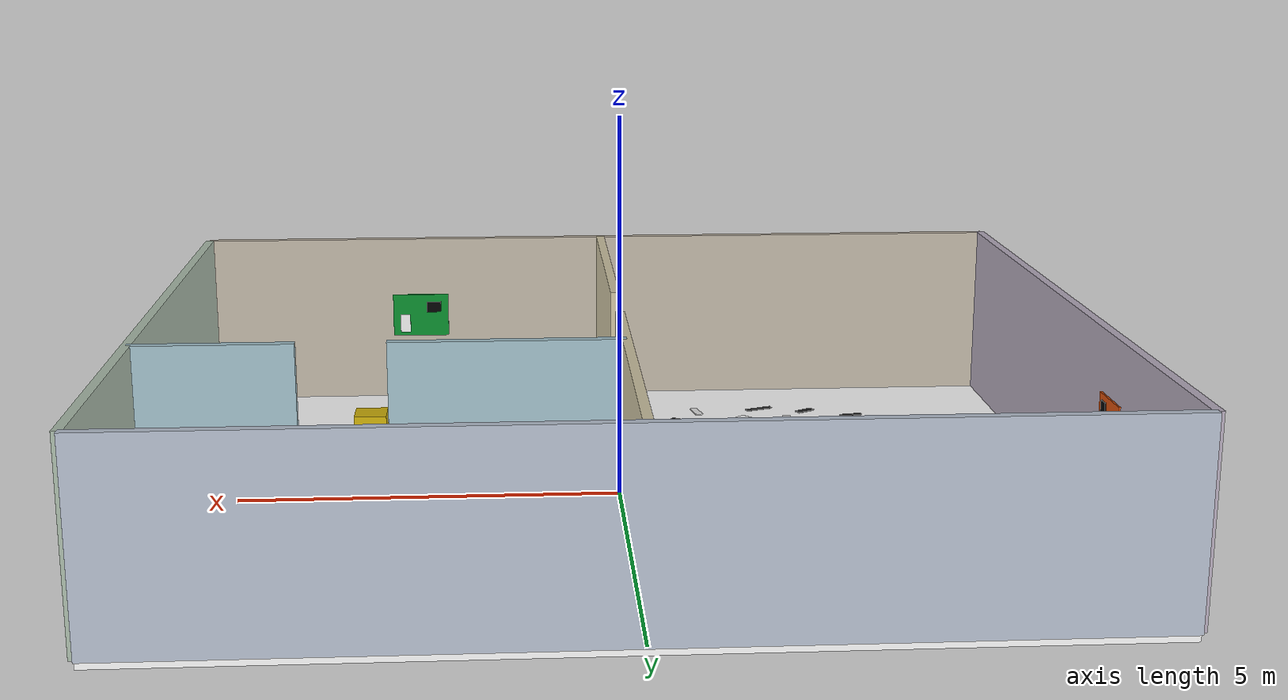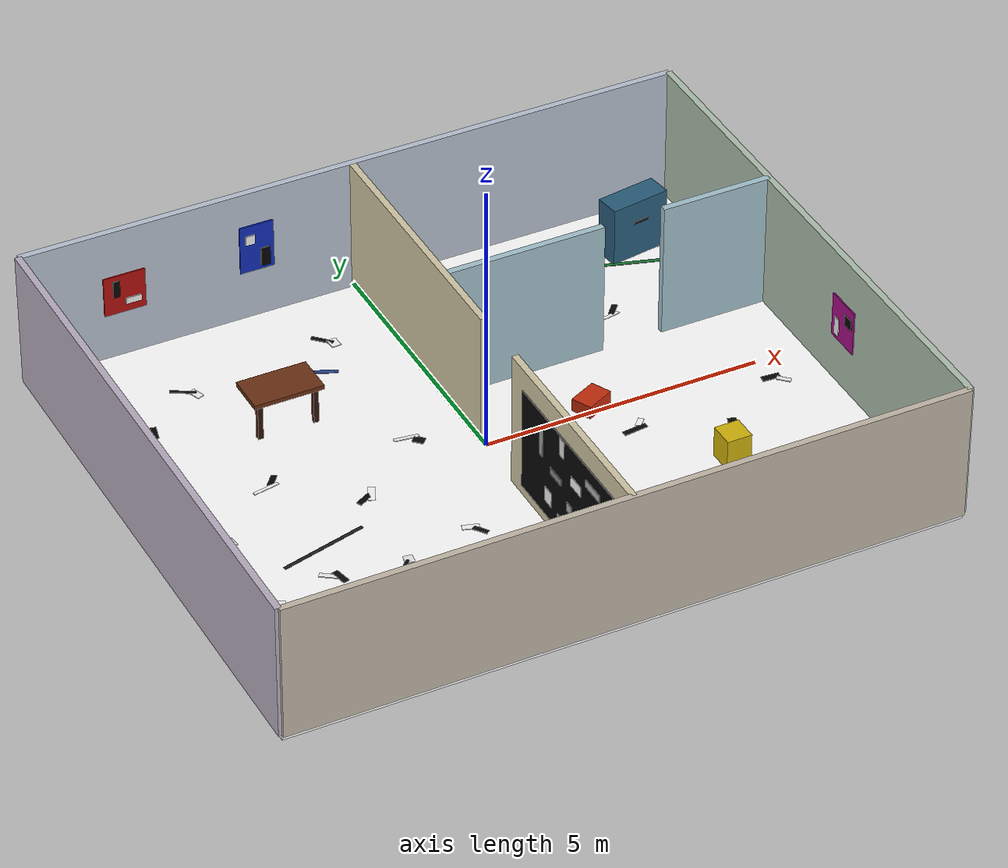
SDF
<?xml version="1.0"?>
<sdf version="1.9">
  <world name="indoor_stereo">
    <physics name="1ms" type="ignored">
      <max_step_size>0.001</max_step_size>
      <real_time_factor>1.0</real_time_factor>
    </physics>

    <plugin filename="ignition-gazebo-physics-system" name="ignition::gazebo::systems::Physics"/>
    <plugin filename="ignition-gazebo-user-commands-system" name="ignition::gazebo::systems::UserCommands"/>
    <plugin filename="ignition-gazebo-scene-broadcaster-system" name="ignition::gazebo::systems::SceneBroadcaster"/>
    <plugin filename="ignition-gazebo-sensors-system" name="ignition::gazebo::systems::Sensors">
      <render_engine>ogre2</render_engine>
    </plugin>

    <scene>
      <ambient>0.55 0.55 0.55 1</ambient>
      <background>0.08 0.10 0.14 1</background>
      <shadows>true</shadows>
    </scene>

    <light name="sun" type="directional">
      <cast_shadows>true</cast_shadows>
      <pose>0 0 8 0 0 0</pose>
      <diffuse>0.8 0.8 0.8 1</diffuse>
      <specular>0.2 0.2 0.2 1</specular>
      <attenuation><range>100</range><constant>0.9</constant><linear>0.01</linear><quadratic>0.001</quadratic></attenuation>
      <direction>-0.4 0.2 -1.0</direction>
    </light>

    <model name="indoor_architecture">
      <static>true</static>
      <link name="architecture">
        <collision name="floor_collision">
          <pose>0 0 -0.05 0 0 0</pose>
          <geometry><box><size>12 10 0.1</size></box></geometry>
        </collision>
        <visual name="floor_visual">
          <pose>0 0 -0.05 0 0 0</pose>
          <geometry><box><size>12 10 0.1</size></box></geometry>
          <material>
            <ambient>1 1 1 1</ambient>
            <diffuse>1 1 1 1</diffuse>
            <specular>0.02 0.02 0.02 1</specular>
            <pbr>
              <metal>
                <albedo_map>../materials/textures/indoor_floor.png</albedo_map>
                <metalness>0.0</metalness>
                <roughness>0.95</roughness>
              </metal>
            </pbr>
          </material>
        </visual>

        <!-- Outer boundary. -->
        <collision name="north_wall_collision"><pose>0 5 1.25 0 0 0</pose><geometry><box><size>12 0.12 2.5</size></box></geometry></collision>
        <visual name="north_wall_visual"><pose>0 5 1.25 0 0 0</pose><geometry><box><size>12 0.12 2.5</size></box></geometry><material><ambient>0.72 0.76 0.82 1</ambient><diffuse>0.72 0.76 0.82 1</diffuse></material></visual>
        <collision name="south_wall_collision"><pose>0 -5 1.25 0 0 0</pose><geometry><box><size>12 0.12 2.5</size></box></geometry></collision>
        <visual name="south_wall_visual"><pose>0 -5 1.25 0 0 0</pose><geometry><box><size>12 0.12 2.5</size></box></geometry><material><ambient>0.76 0.72 0.66 1</ambient><diffuse>0.76 0.72 0.66 1</diffuse></material></visual>
        <collision name="east_wall_collision"><pose>6 0 1.25 0 0 0</pose><geometry><box><size>0.12 10 2.5</size></box></geometry></collision>
        <visual name="east_wall_visual"><pose>6 0 1.25 0 0 0</pose><geometry><box><size>0.12 10 2.5</size></box></geometry><material><ambient>0.68 0.75 0.68 1</ambient><diffuse>0.68 0.75 0.68 1</diffuse></material></visual>
        <collision name="west_wall_collision"><pose>-6 0 1.25 0 0 0</pose><geometry><box><size>0.12 10 2.5</size></box></geometry></collision>
        <visual name="west_wall_visual"><pose>-6 0 1.25 0 0 0</pose><geometry><box><size>0.12 10 2.5</size></box></geometry><material><ambient>0.72 0.68 0.75 1</ambient><diffuse>0.72 0.68 0.75 1</diffuse></material></visual>

        <!-- Internal wall x=0, with a 1.1 m door between y=-1.0 and y=0.1. -->
        <collision name="center_wall_south_collision"><pose>0 -3.0 1.25 0 0 0</pose><geometry><box><size>0.12 4.0 2.5</size></box></geometry></collision>
        <visual name="center_wall_south_visual"><pose>0 -3.0 1.25 0 0 0</pose><geometry><box><size>0.12 4.0 2.5</size></box></geometry><material><ambient>0.82 0.78 0.65 1</ambient><diffuse>0.82 0.78 0.65 1</diffuse></material></visual>
        <collision name="center_wall_north_collision"><pose>0 2.55 1.25 0 0 0</pose><geometry><box><size>0.12 4.9 2.5</size></box></geometry></collision>
        <visual name="center_wall_north_visual"><pose>0 2.55 1.25 0 0 0</pose><geometry><box><size>0.12 4.9 2.5</size></box></geometry><material><ambient>0.82 0.78 0.65 1</ambient><diffuse>0.82 0.78 0.65 1</diffuse></material></visual>

        <!-- Horizontal partition in the east half, with a 1.2 m doorway. -->
        <collision name="east_partition_west_collision"><pose>1.45 1.5 1.25 0 0 0</pose><geometry><box><size>2.9 0.12 2.5</size></box></geometry></collision>
        <visual name="east_partition_west_visual"><pose>1.45 1.5 1.25 0 0 0</pose><geometry><box><size>2.9 0.12 2.5</size></box></geometry><material><ambient>0.64 0.76 0.80 1</ambient><diffuse>0.64 0.76 0.80 1</diffuse></material></visual>
        <collision name="east_partition_east_collision"><pose>5.0 1.5 1.25 0 0 0</pose><geometry><box><size>2.0 0.12 2.5</size></box></geometry></collision>
        <visual name="east_partition_east_visual"><pose>5.0 1.5 1.25 0 0 0</pose><geometry><box><size>2.0 0.12 2.5</size></box></geometry><material><ambient>0.64 0.76 0.80 1</ambient><diffuse>0.64 0.76 0.80 1</diffuse></material></visual>

        <!-- Floor bands produce trackable, non-repeating corners without external assets. -->
        <visual name="floor_band_1"><pose>-3.5 -1.2 0.006 0 0 0.25</pose><geometry><box><size>1.6 0.06 0.012</size></box></geometry><material><ambient>0.12 0.12 0.14 1</ambient><diffuse>0.12 0.12 0.14 1</diffuse></material></visual>
        <visual name="floor_band_2"><pose>-1.8 3.1 0.006 0 0 -0.4</pose><geometry><box><size>1.1 0.08 0.012</size></box></geometry><material><ambient>0.16 0.26 0.55 1</ambient><diffuse>0.16 0.26 0.55 1</diffuse></material></visual>
        <visual name="floor_band_3"><pose>2.5 -3.5 0.006 0 0 0.7</pose><geometry><box><size>1.8 0.05 0.012</size></box></geometry><material><ambient>0.62 0.12 0.10 1</ambient><diffuse>0.62 0.12 0.10 1</diffuse></material></visual>
        <visual name="floor_band_4"><pose>4.5 3.4 0.006 0 0 -0.3</pose><geometry><box><size>1.3 0.07 0.012</size></box></geometry><material><ambient>0.12 0.46 0.22 1</ambient><diffuse>0.12 0.46 0.22 1</diffuse></material></visual>
      </link>
    </model>

    <!-- High-contrast geometric feature panels. Each panel has a unique layout. -->
    <model name="feature_panels">
      <static>true</static>
      <link name="panels">
        <visual name="panel_north_red"><pose>-4.2 4.925 1.25 0 0 0</pose><geometry><box><size>0.75 0.025 0.75</size></box></geometry><material><ambient>0.70 0.06 0.05 1</ambient><diffuse>0.70 0.06 0.05 1</diffuse></material></visual>
        <visual name="panel_north_black_1"><pose>-4.35 4.908 1.37 0 0 0</pose><geometry><box><size>0.12 0.025 0.32</size></box></geometry><material><ambient>0.01 0.01 0.01 1</ambient><diffuse>0.01 0.01 0.01 1</diffuse></material></visual>
        <visual name="panel_north_white_1"><pose>-4.05 4.908 1.08 0 0 0</pose><geometry><box><size>0.28 0.025 0.12</size></box></geometry><material><ambient>0.95 0.95 0.95 1</ambient><diffuse>0.95 0.95 0.95 1</diffuse></material></visual>

        <visual name="panel_north_blue"><pose>-1.8 4.925 1.40 0 0 0</pose><geometry><box><size>0.62 0.025 0.92</size></box></geometry><material><ambient>0.06 0.18 0.72 1</ambient><diffuse>0.06 0.18 0.72 1</diffuse></material></visual>
        <visual name="panel_north_white_2"><pose>-1.92 4.908 1.58 0 0 0</pose><geometry><box><size>0.18 0.025 0.18</size></box></geometry><material><ambient>0.95 0.95 0.95 1</ambient><diffuse>0.95 0.95 0.95 1</diffuse></material></visual>
        <visual name="panel_north_black_2"><pose>-1.65 4.908 1.18 0 0 0</pose><geometry><box><size>0.17 0.025 0.36</size></box></geometry><material><ambient>0.01 0.01 0.01 1</ambient><diffuse>0.01 0.01 0.01 1</diffuse></material></visual>

        <visual name="panel_south_green"><pose>2.8 -4.925 1.30 0 0 0</pose><geometry><box><size>0.85 0.025 0.65</size></box></geometry><material><ambient>0.04 0.56 0.18 1</ambient><diffuse>0.04 0.56 0.18 1</diffuse></material></visual>
        <visual name="panel_south_black_1"><pose>2.60 -4.908 1.43 0 0 0</pose><geometry><box><size>0.22 0.025 0.16</size></box></geometry><material><ambient>0.01 0.01 0.01 1</ambient><diffuse>0.01 0.01 0.01 1</diffuse></material></visual>
        <visual name="panel_south_white_1"><pose>3.04 -4.908 1.17 0 0 0</pose><geometry><box><size>0.15 0.025 0.28</size></box></geometry><material><ambient>0.95 0.95 0.95 1</ambient><diffuse>0.95 0.95 0.95 1</diffuse></material></visual>

        <visual name="panel_west_orange"><pose>-5.925 1.8 1.35 0 0 0</pose><geometry><box><size>0.025 0.72 0.72</size></box></geometry><material><ambient>0.88 0.32 0.04 1</ambient><diffuse>0.88 0.32 0.04 1</diffuse></material></visual>
        <visual name="panel_west_black"><pose>-5.908 1.62 1.48 0 0 0</pose><geometry><box><size>0.025 0.16 0.30</size></box></geometry><material><ambient>0.01 0.01 0.01 1</ambient><diffuse>0.01 0.01 0.01 1</diffuse></material></visual>
        <visual name="panel_west_white"><pose>-5.908 1.98 1.18 0 0 0</pose><geometry><box><size>0.025 0.26 0.13</size></box></geometry><material><ambient>0.95 0.95 0.95 1</ambient><diffuse>0.95 0.95 0.95 1</diffuse></material></visual>

        <visual name="panel_east_magenta"><pose>5.925 -1.2 1.28 0 0 0</pose><geometry><box><size>0.025 0.68 0.82</size></box></geometry><material><ambient>0.64 0.05 0.52 1</ambient><diffuse>0.64 0.05 0.52 1</diffuse></material></visual>
        <visual name="panel_east_black"><pose>5.908 -1.38 1.42 0 0 0</pose><geometry><box><size>0.025 0.20 0.20</size></box></geometry><material><ambient>0.01 0.01 0.01 1</ambient><diffuse>0.01 0.01 0.01 1</diffuse></material></visual>
        <visual name="panel_east_white"><pose>5.908 -1.03 1.12 0 0 0</pose><geometry><box><size>0.025 0.13 0.33</size></box></geometry><material><ambient>0.95 0.95 0.95 1</ambient><diffuse>0.95 0.95 0.95 1</diffuse></material></visual>
      </link>
    </model>

    <model name="start_feature_board">
      <static>true</static>
      <link name="board">
        <visual name="background">
          <pose>-0.072 -3.0 1.15 0 0 0</pose>
          <geometry><box><size>0.018 3.2 1.9</size></box></geometry>
          <material><ambient>0.025 0.025 0.025 1</ambient><diffuse>0.025 0.025 0.025 1</diffuse></material>
        </visual>
        <visual name="tile_01"><pose>-0.086 -4.18 1.38 0 0 0</pose><geometry><box><size>0.010 0.18 0.66</size></box></geometry><material><ambient>0.95 0.95 0.95 1</ambient><diffuse>0.95 0.95 0.95 1</diffuse></material></visual>
        <visual name="tile_02"><pose>-0.086 -3.82 1.78 0 0 0</pose><geometry><box><size>0.010 0.46 0.14</size></box></geometry><material><ambient>0.70 0.70 0.70 1</ambient><diffuse>0.70 0.70 0.70 1</diffuse></material></visual>
        <visual name="tile_03"><pose>-0.086 -3.72 1.18 0 0 0</pose><geometry><box><size>0.010 0.26 0.22</size></box></geometry><material><ambient>0.92 0.92 0.92 1</ambient><diffuse>0.92 0.92 0.92 1</diffuse></material></visual>
        <visual name="tile_04"><pose>-0.086 -3.46 0.54 0 0 0</pose><geometry><box><size>0.010 0.13 0.42</size></box></geometry><material><ambient>0.58 0.58 0.58 1</ambient><diffuse>0.58 0.58 0.58 1</diffuse></material></visual>
        <visual name="tile_05"><pose>-0.086 -3.27 1.48 0 0 0</pose><geometry><box><size>0.010 0.34 0.19</size></box></geometry><material><ambient>0.98 0.98 0.98 1</ambient><diffuse>0.98 0.98 0.98 1</diffuse></material></visual>
        <visual name="tile_06"><pose>-0.086 -3.05 0.88 0 0 0</pose><geometry><box><size>0.010 0.17 0.17</size></box></geometry><material><ambient>0.68 0.68 0.68 1</ambient><diffuse>0.68 0.68 0.68 1</diffuse></material></visual>
        <visual name="tile_07"><pose>-0.086 -2.78 1.90 0 0 0</pose><geometry><box><size>0.010 0.16 0.34</size></box></geometry><material><ambient>0.88 0.88 0.88 1</ambient><diffuse>0.88 0.88 0.88 1</diffuse></material></visual>
        <visual name="tile_08"><pose>-0.086 -2.58 1.20 0 0 0</pose><geometry><box><size>0.010 0.38 0.12</size></box></geometry><material><ambient>0.55 0.55 0.55 1</ambient><diffuse>0.55 0.55 0.55 1</diffuse></material></visual>
        <visual name="tile_09"><pose>-0.086 -2.34 0.62 0 0 0</pose><geometry><box><size>0.010 0.22 0.28</size></box></geometry><material><ambient>0.96 0.96 0.96 1</ambient><diffuse>0.96 0.96 0.96 1</diffuse></material></visual>
        <visual name="tile_10"><pose>-0.086 -2.08 1.55 0 0 0</pose><geometry><box><size>0.010 0.12 0.54</size></box></geometry><material><ambient>0.62 0.62 0.62 1</ambient><diffuse>0.62 0.62 0.62 1</diffuse></material></visual>
        <visual name="tile_11"><pose>-0.086 -3.98 0.66 0 0 0</pose><geometry><box><size>0.010 0.31 0.13</size></box></geometry><material><ambient>0.78 0.78 0.78 1</ambient><diffuse>0.78 0.78 0.78 1</diffuse></material></visual>
        <visual name="tile_12"><pose>-0.086 -2.72 0.40 0 0 0</pose><geometry><box><size>0.010 0.14 0.21</size></box></geometry><material><ambient>0.90 0.90 0.90 1</ambient><diffuse>0.90 0.90 0.90 1</diffuse></material></visual>
      </link>
    </model>

    <model name="start_floor_mosaic">
      <static>true</static>
      <link name="mosaic">
        <visual name="mark_01"><pose>-3.72 -3.42 0.007 0 0 0.18</pose><geometry><box><size>0.34 0.075 0.014</size></box></geometry><material><ambient>0.03 0.03 0.03 1</ambient><diffuse>0.03 0.03 0.03 1</diffuse></material></visual>
        <visual name="mark_02"><pose>-3.38 -3.08 0.007 0 0 -0.32</pose><geometry><box><size>0.14 0.31 0.014</size></box></geometry><material><ambient>0.94 0.94 0.94 1</ambient><diffuse>0.94 0.94 0.94 1</diffuse></material></visual>
        <visual name="mark_03"><pose>-3.06 -3.68 0.007 0 0 0.52</pose><geometry><box><size>0.29 0.11 0.014</size></box></geometry><material><ambient>0.08 0.08 0.08 1</ambient><diffuse>0.08 0.08 0.08 1</diffuse></material></visual>
        <visual name="mark_04"><pose>-2.72 -3.24 0.007 0 0 -0.12</pose><geometry><box><size>0.12 0.38 0.014</size></box></geometry><material><ambient>0.88 0.88 0.88 1</ambient><diffuse>0.88 0.88 0.88 1</diffuse></material></visual>
        <visual name="mark_05"><pose>-2.37 -3.82 0.007 0 0 0.36</pose><geometry><box><size>0.42 0.08 0.014</size></box></geometry><material><ambient>0.04 0.04 0.04 1</ambient><diffuse>0.04 0.04 0.04 1</diffuse></material></visual>
        <visual name="mark_06"><pose>-2.08 -3.35 0.007 0 0 0.72</pose><geometry><box><size>0.18 0.18 0.014</size></box></geometry><material><ambient>0.97 0.97 0.97 1</ambient><diffuse>0.97 0.97 0.97 1</diffuse></material></visual>
        <visual name="mark_07"><pose>-1.72 -3.05 0.007 0 0 -0.48</pose><geometry><box><size>0.36 0.07 0.014</size></box></geometry><material><ambient>0.06 0.06 0.06 1</ambient><diffuse>0.06 0.06 0.06 1</diffuse></material></visual>
        <visual name="mark_08"><pose>-1.40 -3.72 0.007 0 0 0.22</pose><geometry><box><size>0.11 0.33 0.014</size></box></geometry><material><ambient>0.90 0.90 0.90 1</ambient><diffuse>0.90 0.90 0.90 1</diffuse></material></visual>
        <visual name="mark_09"><pose>-1.08 -3.28 0.007 0 0 -0.64</pose><geometry><box><size>0.24 0.13 0.014</size></box></geometry><material><ambient>0.02 0.02 0.02 1</ambient><diffuse>0.02 0.02 0.02 1</diffuse></material></visual>
      </link>
    </model>

    <model name="distributed_floor_features">
      <static>true</static>
      <link name="features">
        <!-- West room, south-to-north route. -->
        <visual name="w01a"><pose>-4.85 -2.35 0.007 0 0 0.31</pose><geometry><box><size>0.46 0.07 0.014</size></box></geometry><material><ambient>0.015 0.015 0.015 1</ambient><diffuse>0.015 0.015 0.015 1</diffuse></material></visual>
        <visual name="w01b"><pose>-4.72 -2.22 0.007 0 0 -0.48</pose><geometry><box><size>0.13 0.25 0.014</size></box></geometry><material><ambient>0.96 0.96 0.96 1</ambient><diffuse>0.96 0.96 0.96 1</diffuse></material></visual>
        <visual name="w02a"><pose>-3.72 -1.88 0.007 0 0 -0.61</pose><geometry><box><size>0.34 0.09 0.014</size></box></geometry><material><ambient>0.94 0.94 0.94 1</ambient><diffuse>0.94 0.94 0.94 1</diffuse></material></visual>
        <visual name="w02b"><pose>-3.57 -1.98 0.007 0 0 0.22</pose><geometry><box><size>0.11 0.31 0.014</size></box></geometry><material><ambient>0.025 0.025 0.025 1</ambient><diffuse>0.025 0.025 0.025 1</diffuse></material></visual>
        <visual name="w03a"><pose>-2.58 -2.22 0.007 0 0 0.76</pose><geometry><box><size>0.41 0.06 0.014</size></box></geometry><material><ambient>0.02 0.02 0.02 1</ambient><diffuse>0.02 0.02 0.02 1</diffuse></material></visual>
        <visual name="w03b"><pose>-2.42 -2.07 0.007 0 0 -0.16</pose><geometry><box><size>0.16 0.18 0.014</size></box></geometry><material><ambient>0.91 0.91 0.91 1</ambient><diffuse>0.91 0.91 0.91 1</diffuse></material></visual>
        <visual name="w04a"><pose>-1.18 -1.78 0.007 0 0 -0.28</pose><geometry><box><size>0.29 0.11 0.014</size></box></geometry><material><ambient>0.97 0.97 0.97 1</ambient><diffuse>0.97 0.97 0.97 1</diffuse></material></visual>
        <visual name="w04b"><pose>-1.07 -1.92 0.007 0 0 0.64</pose><geometry><box><size>0.09 0.27 0.014</size></box></geometry><material><ambient>0.035 0.035 0.035 1</ambient><diffuse>0.035 0.035 0.035 1</diffuse></material></visual>

        <visual name="w05a"><pose>-4.92 -0.32 0.007 0 0 -0.73</pose><geometry><box><size>0.38 0.08 0.014</size></box></geometry><material><ambient>0.03 0.03 0.03 1</ambient><diffuse>0.03 0.03 0.03 1</diffuse></material></visual>
        <visual name="w05b"><pose>-4.76 -0.42 0.007 0 0 0.10</pose><geometry><box><size>0.14 0.22 0.014</size></box></geometry><material><ambient>0.93 0.93 0.93 1</ambient><diffuse>0.93 0.93 0.93 1</diffuse></material></visual>
        <visual name="w06a"><pose>-3.68 0.58 0.007 0 0 0.18</pose><geometry><box><size>0.48 0.06 0.014</size></box></geometry><material><ambient>0.96 0.96 0.96 1</ambient><diffuse>0.96 0.96 0.96 1</diffuse></material></visual>
        <visual name="w06b"><pose>-3.51 0.72 0.007 0 0 -0.69</pose><geometry><box><size>0.10 0.29 0.014</size></box></geometry><material><ambient>0.01 0.01 0.01 1</ambient><diffuse>0.01 0.01 0.01 1</diffuse></material></visual>
        <visual name="w07a"><pose>-2.38 -0.38 0.007 0 0 0.49</pose><geometry><box><size>0.31 0.10 0.014</size></box></geometry><material><ambient>0.018 0.018 0.018 1</ambient><diffuse>0.018 0.018 0.018 1</diffuse></material></visual>
        <visual name="w07b"><pose>-2.22 -0.30 0.007 0 0 -0.42</pose><geometry><box><size>0.12 0.34 0.014</size></box></geometry><material><ambient>0.98 0.98 0.98 1</ambient><diffuse>0.98 0.98 0.98 1</diffuse></material></visual>
        <visual name="w08a"><pose>-1.08 0.76 0.007 0 0 -0.14</pose><geometry><box><size>0.43 0.07 0.014</size></box></geometry><material><ambient>0.92 0.92 0.92 1</ambient><diffuse>0.92 0.92 0.92 1</diffuse></material></visual>
        <visual name="w08b"><pose>-0.92 0.62 0.007 0 0 0.78</pose><geometry><box><size>0.15 0.20 0.014</size></box></geometry><material><ambient>0.028 0.028 0.028 1</ambient><diffuse>0.028 0.028 0.028 1</diffuse></material></visual>

        <visual name="w09a"><pose>-4.86 2.62 0.007 0 0 0.67</pose><geometry><box><size>0.37 0.09 0.014</size></box></geometry><material><ambient>0.97 0.97 0.97 1</ambient><diffuse>0.97 0.97 0.97 1</diffuse></material></visual>
        <visual name="w09b"><pose>-4.69 2.72 0.007 0 0 -0.24</pose><geometry><box><size>0.10 0.30 0.014</size></box></geometry><material><ambient>0.012 0.012 0.012 1</ambient><diffuse>0.012 0.012 0.012 1</diffuse></material></visual>
        <visual name="w10a"><pose>-3.82 3.52 0.007 0 0 -0.52</pose><geometry><box><size>0.45 0.06 0.014</size></box></geometry><material><ambient>0.022 0.022 0.022 1</ambient><diffuse>0.022 0.022 0.022 1</diffuse></material></visual>
        <visual name="w10b"><pose>-3.65 3.38 0.007 0 0 0.34</pose><geometry><box><size>0.13 0.24 0.014</size></box></geometry><material><ambient>0.95 0.95 0.95 1</ambient><diffuse>0.95 0.95 0.95 1</diffuse></material></visual>
        <visual name="w11a"><pose>-2.54 2.92 0.007 0 0 0.27</pose><geometry><box><size>0.33 0.12 0.014</size></box></geometry><material><ambient>0.90 0.90 0.90 1</ambient><diffuse>0.90 0.90 0.90 1</diffuse></material></visual>
        <visual name="w11b"><pose>-2.37 3.05 0.007 0 0 -0.64</pose><geometry><box><size>0.08 0.28 0.014</size></box></geometry><material><ambient>0.032 0.032 0.032 1</ambient><diffuse>0.032 0.032 0.032 1</diffuse></material></visual>
        <visual name="w12a"><pose>-1.16 3.78 0.007 0 0 -0.79</pose><geometry><box><size>0.40 0.08 0.014</size></box></geometry><material><ambient>0.016 0.016 0.016 1</ambient><diffuse>0.016 0.016 0.016 1</diffuse></material></visual>
        <visual name="w12b"><pose>-1.02 3.63 0.007 0 0 0.05</pose><geometry><box><size>0.17 0.21 0.014</size></box></geometry><material><ambient>0.98 0.98 0.98 1</ambient><diffuse>0.98 0.98 0.98 1</diffuse></material></visual>

        <!-- East room below the horizontal partition. -->
        <visual name="e01a"><pose>1.02 -3.72 0.007 0 0 0.41</pose><geometry><box><size>0.36 0.07 0.014</size></box></geometry><material><ambient>0.02 0.02 0.02 1</ambient><diffuse>0.02 0.02 0.02 1</diffuse></material></visual>
        <visual name="e01b"><pose>1.17 -3.60 0.007 0 0 -0.50</pose><geometry><box><size>0.11 0.26 0.014</size></box></geometry><material><ambient>0.95 0.95 0.95 1</ambient><diffuse>0.95 0.95 0.95 1</diffuse></material></visual>
        <visual name="e02a"><pose>2.18 -2.68 0.007 0 0 -0.24</pose><geometry><box><size>0.47 0.09 0.014</size></box></geometry><material><ambient>0.97 0.97 0.97 1</ambient><diffuse>0.97 0.97 0.97 1</diffuse></material></visual>
        <visual name="e02b"><pose>2.32 -2.84 0.007 0 0 0.70</pose><geometry><box><size>0.14 0.19 0.014</size></box></geometry><material><ambient>0.014 0.014 0.014 1</ambient><diffuse>0.014 0.014 0.014 1</diffuse></material></visual>
        <visual name="e03a"><pose>3.42 -3.61 0.007 0 0 0.74</pose><geometry><box><size>0.30 0.11 0.014</size></box></geometry><material><ambient>0.024 0.024 0.024 1</ambient><diffuse>0.024 0.024 0.024 1</diffuse></material></visual>
        <visual name="e03b"><pose>3.58 -3.50 0.007 0 0 -0.13</pose><geometry><box><size>0.09 0.32 0.014</size></box></geometry><material><ambient>0.93 0.93 0.93 1</ambient><diffuse>0.93 0.93 0.93 1</diffuse></material></visual>
        <visual name="e04a"><pose>4.86 -2.92 0.007 0 0 -0.45</pose><geometry><box><size>0.42 0.06 0.014</size></box></geometry><material><ambient>0.96 0.96 0.96 1</ambient><diffuse>0.96 0.96 0.96 1</diffuse></material></visual>
        <visual name="e04b"><pose>5.02 -3.04 0.007 0 0 0.39</pose><geometry><box><size>0.16 0.23 0.014</size></box></geometry><material><ambient>0.03 0.03 0.03 1</ambient><diffuse>0.03 0.03 0.03 1</diffuse></material></visual>

        <visual name="e05a"><pose>1.08 -1.48 0.007 0 0 -0.66</pose><geometry><box><size>0.35 0.08 0.014</size></box></geometry><material><ambient>0.91 0.91 0.91 1</ambient><diffuse>0.91 0.91 0.91 1</diffuse></material></visual>
        <visual name="e05b"><pose>1.24 -1.58 0.007 0 0 0.19</pose><geometry><box><size>0.12 0.29 0.014</size></box></geometry><material><ambient>0.018 0.018 0.018 1</ambient><diffuse>0.018 0.018 0.018 1</diffuse></material></visual>
        <visual name="e06a"><pose>2.35 -0.72 0.007 0 0 0.11</pose><geometry><box><size>0.44 0.10 0.014</size></box></geometry><material><ambient>0.028 0.028 0.028 1</ambient><diffuse>0.028 0.028 0.028 1</diffuse></material></visual>
        <visual name="e06b"><pose>2.51 -0.58 0.007 0 0 -0.76</pose><geometry><box><size>0.10 0.20 0.014</size></box></geometry><material><ambient>0.98 0.98 0.98 1</ambient><diffuse>0.98 0.98 0.98 1</diffuse></material></visual>
        <visual name="e07a"><pose>3.72 -1.43 0.007 0 0 0.55</pose><geometry><box><size>0.39 0.07 0.014</size></box></geometry><material><ambient>0.95 0.95 0.95 1</ambient><diffuse>0.95 0.95 0.95 1</diffuse></material></visual>
        <visual name="e07b"><pose>3.86 -1.29 0.007 0 0 -0.34</pose><geometry><box><size>0.15 0.27 0.014</size></box></geometry><material><ambient>0.012 0.012 0.012 1</ambient><diffuse>0.012 0.012 0.012 1</diffuse></material></visual>
        <visual name="e08a"><pose>5.02 -0.48 0.007 0 0 -0.08</pose><geometry><box><size>0.32 0.12 0.014</size></box></geometry><material><ambient>0.021 0.021 0.021 1</ambient><diffuse>0.021 0.021 0.021 1</diffuse></material></visual>
        <visual name="e08b"><pose>5.19 -0.62 0.007 0 0 0.80</pose><geometry><box><size>0.09 0.25 0.014</size></box></geometry><material><ambient>0.92 0.92 0.92 1</ambient><diffuse>0.92 0.92 0.92 1</diffuse></material></visual>

        <!-- East room above the partition. -->
        <visual name="n01a"><pose>0.92 2.35 0.007 0 0 0.63</pose><geometry><box><size>0.46 0.08 0.014</size></box></geometry><material><ambient>0.98 0.98 0.98 1</ambient><diffuse>0.98 0.98 0.98 1</diffuse></material></visual>
        <visual name="n01b"><pose>1.07 2.49 0.007 0 0 -0.29</pose><geometry><box><size>0.12 0.22 0.014</size></box></geometry><material><ambient>0.016 0.016 0.016 1</ambient><diffuse>0.016 0.016 0.016 1</diffuse></material></visual>
        <visual name="n02a"><pose>2.18 2.82 0.007 0 0 -0.37</pose><geometry><box><size>0.34 0.10 0.014</size></box></geometry><material><ambient>0.02 0.02 0.02 1</ambient><diffuse>0.02 0.02 0.02 1</diffuse></material></visual>
        <visual name="n02b"><pose>2.35 2.70 0.007 0 0 0.51</pose><geometry><box><size>0.16 0.31 0.014</size></box></geometry><material><ambient>0.94 0.94 0.94 1</ambient><diffuse>0.94 0.94 0.94 1</diffuse></material></visual>
        <visual name="n03a"><pose>3.42 2.22 0.007 0 0 0.16</pose><geometry><box><size>0.41 0.06 0.014</size></box></geometry><material><ambient>0.96 0.96 0.96 1</ambient><diffuse>0.96 0.96 0.96 1</diffuse></material></visual>
        <visual name="n03b"><pose>3.57 2.36 0.007 0 0 -0.71</pose><geometry><box><size>0.10 0.28 0.014</size></box></geometry><material><ambient>0.026 0.026 0.026 1</ambient><diffuse>0.026 0.026 0.026 1</diffuse></material></visual>
        <visual name="n04a"><pose>5.02 2.63 0.007 0 0 -0.58</pose><geometry><box><size>0.37 0.09 0.014</size></box></geometry><material><ambient>0.018 0.018 0.018 1</ambient><diffuse>0.018 0.018 0.018 1</diffuse></material></visual>
        <visual name="n04b"><pose>5.18 2.53 0.007 0 0 0.25</pose><geometry><box><size>0.14 0.24 0.014</size></box></geometry><material><ambient>0.97 0.97 0.97 1</ambient><diffuse>0.97 0.97 0.97 1</diffuse></material></visual>

        <visual name="n05a"><pose>1.18 4.06 0.007 0 0 -0.20</pose><geometry><box><size>0.43 0.07 0.014</size></box></geometry><material><ambient>0.013 0.013 0.013 1</ambient><diffuse>0.013 0.013 0.013 1</diffuse></material></visual>
        <visual name="n05b"><pose>1.34 4.19 0.007 0 0 0.68</pose><geometry><box><size>0.11 0.30 0.014</size></box></geometry><material><ambient>0.93 0.93 0.93 1</ambient><diffuse>0.93 0.93 0.93 1</diffuse></material></visual>
        <visual name="n06a"><pose>2.72 4.12 0.007 0 0 0.79</pose><geometry><box><size>0.31 0.11 0.014</size></box></geometry><material><ambient>0.95 0.95 0.95 1</ambient><diffuse>0.95 0.95 0.95 1</diffuse></material></visual>
        <visual name="n06b"><pose>2.87 4.00 0.007 0 0 -0.09</pose><geometry><box><size>0.15 0.21 0.014</size></box></geometry><material><ambient>0.022 0.022 0.022 1</ambient><diffuse>0.022 0.022 0.022 1</diffuse></material></visual>
        <visual name="n07a"><pose>4.02 4.25 0.007 0 0 -0.47</pose><geometry><box><size>0.48 0.06 0.014</size></box></geometry><material><ambient>0.03 0.03 0.03 1</ambient><diffuse>0.03 0.03 0.03 1</diffuse></material></visual>
        <visual name="n07b"><pose>4.19 4.11 0.007 0 0 0.42</pose><geometry><box><size>0.09 0.27 0.014</size></box></geometry><material><ambient>0.98 0.98 0.98 1</ambient><diffuse>0.98 0.98 0.98 1</diffuse></material></visual>
        <visual name="n08a"><pose>5.25 3.72 0.007 0 0 0.33</pose><geometry><box><size>0.36 0.10 0.014</size></box></geometry><material><ambient>0.92 0.92 0.92 1</ambient><diffuse>0.92 0.92 0.92 1</diffuse></material></visual>
        <visual name="n08b"><pose>5.39 3.86 0.007 0 0 -0.56</pose><geometry><box><size>0.13 0.26 0.014</size></box></geometry><material><ambient>0.015 0.015 0.015 1</ambient><diffuse>0.015 0.015 0.015 1</diffuse></material></visual>
      </link>
    </model>

    <model name="west_table">
      <static>true</static><pose>-2.7 2.1 0 0 0 0</pose>
      <link name="table">
        <collision name="top_collision"><pose>0 0 0.72 0 0 0</pose><geometry><box><size>1.25 0.72 0.08</size></box></geometry></collision>
        <visual name="top_visual"><pose>0 0 0.72 0 0 0</pose><geometry><box><size>1.25 0.72 0.08</size></box></geometry><material><ambient>0.42 0.19 0.08 1</ambient><diffuse>0.42 0.19 0.08 1</diffuse></material></visual>
        <collision name="leg1"><pose>-0.5 -0.25 0.35 0 0 0</pose><geometry><box><size>0.09 0.09 0.70</size></box></geometry></collision>
        <visual name="leg1v"><pose>-0.5 -0.25 0.35 0 0 0</pose><geometry><box><size>0.09 0.09 0.70</size></box></geometry><material><ambient>0.18 0.08 0.03 1</ambient><diffuse>0.18 0.08 0.03 1</diffuse></material></visual>
        <collision name="leg2"><pose>0.5 -0.25 0.35 0 0 0</pose><geometry><box><size>0.09 0.09 0.70</size></box></geometry></collision>
        <visual name="leg2v"><pose>0.5 -0.25 0.35 0 0 0</pose><geometry><box><size>0.09 0.09 0.70</size></box></geometry><material><ambient>0.18 0.08 0.03 1</ambient><diffuse>0.18 0.08 0.03 1</diffuse></material></visual>
      </link>
    </model>

    <model name="east_cabinet">
      <static>true</static><pose>4.7 3.8 0.55 0 0 0.15</pose>
      <link name="cabinet">
        <collision name="collision"><geometry><box><size>1.1 0.45 1.1</size></box></geometry></collision>
        <visual name="visual"><geometry><box><size>1.1 0.45 1.1</size></box></geometry><material><ambient>0.16 0.36 0.48 1</ambient><diffuse>0.16 0.36 0.48 1</diffuse></material></visual>
        <visual name="handle"><pose>0 -0.235 0.15 0 0 0</pose><geometry><box><size>0.28 0.025 0.04</size></box></geometry><material><ambient>0.02 0.02 0.02 1</ambient><diffuse>0.02 0.02 0.02 1</diffuse></material></visual>
      </link>
    </model>

    <model name="low_obstacle">
      <static>true</static><pose>2.0 0.15 0.12 0 0 0.45</pose>
      <link name="box">
        <collision name="collision"><geometry><box><size>0.55 0.38 0.24</size></box></geometry></collision>
        <visual name="visual"><geometry><box><size>0.55 0.38 0.24</size></box></geometry><material><ambient>0.75 0.17 0.05 1</ambient><diffuse>0.75 0.17 0.05 1</diffuse></material></visual>
      </link>
    </model>

    <!-- Velocity-controlled obstacle. The ROS controller moves it across the east corridor. -->
    <model name="moving_obstacle">
      <pose>3.4 -2.1 0.28 0 0 0</pose>
      <link name="body">
        <inertial><mass>4.0</mass><inertia><ixx>0.15</ixx><ixy>0</ixy><ixz>0</ixz><iyy>0.15</iyy><iyz>0</iyz><izz>0.15</izz></inertia></inertial>
        <collision name="collision"><geometry><box><size>0.45 0.45 0.56</size></box></geometry></collision>
        <visual name="visual"><geometry><box><size>0.45 0.45 0.56</size></box></geometry><material><ambient>0.82 0.70 0.04 1</ambient><diffuse>0.82 0.70 0.04 1</diffuse></material></visual>
      </link>
      <plugin filename="ignition-gazebo-velocity-control-system" name="ignition::gazebo::systems::VelocityControl">
        <topic>/model/moving_obstacle/cmd_vel</topic>
      </plugin>
    </model>
  </world>
</sdf>
